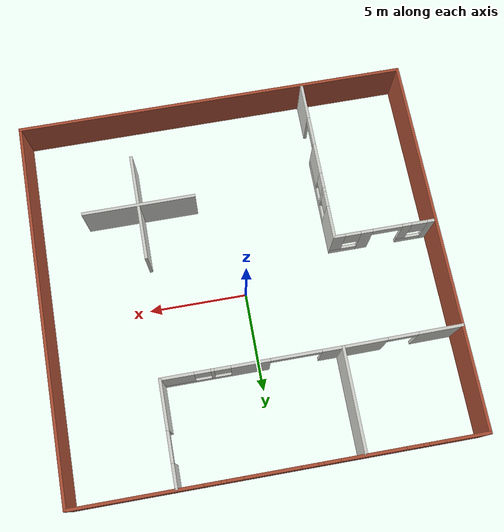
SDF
<?xml version='1.0'?>
<sdf version='1.6'>
  <model name='simpleBuilding'>
    <pose frame=''>0.055 -0.495 0 0 -0 0</pose>
    <link name='Wall_11'>
      <pose frame=''>-0.023 9.55 0 0 -0 0</pose>
      <visual name='Wall_11_Visual_0'>
        <pose frame=''>-8.89849 0 1.25 0 -0 0</pose>
        <geometry>
          <box>
            <size>2.20302 0.15 2.5</size>
          </box>
        </geometry>
        <material>
          <script>
            <uri>file://media/materials/scripts/gazebo.material</uri>
            <name>Gazebo/Bricks</name>
          </script>
          <ambient>0.760784 0.662745 0.627451 1</ambient>
        </material>
        <meta>
          <layer>0</layer>
        </meta>
      </visual>
      <collision name='Wall_11_Collision_0'>
        <geometry>
          <box>
            <size>2.20302 0.15 2.5</size>
          </box>
        </geometry>
        <pose frame=''>-8.89849 0 1.25 0 -0 0</pose>
      </collision>
      <visual name='Wall_11_Visual_1'>
        <pose frame=''>1.10151 0 0.25 0 -0 0</pose>
        <geometry>
          <box>
            <size>17.797 0.15 0.5</size>
          </box>
        </geometry>
        <material>
          <script>
            <uri>file://media/materials/scripts/gazebo.material</uri>
            <name>Gazebo/Bricks</name>
          </script>
          <ambient>0.760784 0.662745 0.627451 1</ambient>
        </material>
        <meta>
          <layer>0</layer>
        </meta>
      </visual>
      <collision name='Wall_11_Collision_1'>
        <geometry>
          <box>
            <size>17.797 0.15 0.5</size>
          </box>
        </geometry>
        <pose frame=''>1.10151 0 0.25 0 -0 0</pose>
      </collision>
      <visual name='Wall_11_Visual_2'>
        <pose frame=''>-6.86498 0 1.5 0 -0 0</pose>
        <geometry>
          <box>
            <size>0.264008 0.15 2</size>
          </box>
        </geometry>
        <material>
          <script>
            <uri>file://media/materials/scripts/gazebo.material</uri>
            <name>Gazebo/Bricks</name>
          </script>
          <ambient>0.760784 0.662745 0.627451 1</ambient>
        </material>
        <meta>
          <layer>0</layer>
        </meta>
      </visual>
      <collision name='Wall_11_Collision_2'>
        <geometry>
          <box>
            <size>0.264008 0.15 2</size>
          </box>
        </geometry>
        <pose frame=''>-6.86498 0 1.5 0 -0 0</pose>
      </collision>
      <visual name='Wall_11_Visual_3'>
        <pose frame=''>-4.39 0 1.5 0 -0 0</pose>
        <geometry>
          <box>
            <size>3.08594 0.15 2</size>
          </box>
        </geometry>
        <material>
          <script>
            <uri>file://media/materials/scripts/gazebo.material</uri>
            <name>Gazebo/Bricks</name>
          </script>
          <ambient>0.760784 0.662745 0.627451 1</ambient>
        </material>
        <meta>
          <layer>0</layer>
        </meta>
      </visual>
      <collision name='Wall_11_Collision_3'>
        <geometry>
          <box>
            <size>3.08594 0.15 2</size>
          </box>
        </geometry>
        <pose frame=''>-4.39 0 1.5 0 -0 0</pose>
      </collision>
      <visual name='Wall_11_Visual_4'>
        <pose frame=''>-1.91503 0 1.5 0 -0 0</pose>
        <geometry>
          <box>
            <size>0.264008 0.15 2</size>
          </box>
        </geometry>
        <material>
          <script>
            <uri>file://media/materials/scripts/gazebo.material</uri>
            <name>Gazebo/Bricks</name>
          </script>
          <ambient>0.760784 0.662745 0.627451 1</ambient>
        </material>
        <meta>
          <layer>0</layer>
        </meta>
      </visual>
      <collision name='Wall_11_Collision_4'>
        <geometry>
          <box>
            <size>0.264008 0.15 2</size>
          </box>
        </geometry>
        <pose frame=''>-1.91503 0 1.5 0 -0 0</pose>
      </collision>
      <visual name='Wall_11_Visual_5'>
        <pose frame=''>0.351773 0 1.5 0 -0 0</pose>
        <geometry>
          <box>
            <size>2.66959 0.15 2</size>
          </box>
        </geometry>
        <material>
          <script>
            <uri>file://media/materials/scripts/gazebo.material</uri>
            <name>Gazebo/Bricks</name>
          </script>
          <ambient>0.760784 0.662745 0.627451 1</ambient>
        </material>
        <meta>
          <layer>0</layer>
        </meta>
      </visual>
      <collision name='Wall_11_Collision_5'>
        <geometry>
          <box>
            <size>2.66959 0.15 2</size>
          </box>
        </geometry>
        <pose frame=''>0.351773 0 1.5 0 -0 0</pose>
      </collision>
      <visual name='Wall_11_Visual_6'>
        <pose frame=''>2.61857 0 1.5 0 -0 0</pose>
        <geometry>
          <box>
            <size>0.264008 0.15 2</size>
          </box>
        </geometry>
        <material>
          <script>
            <uri>file://media/materials/scripts/gazebo.material</uri>
            <name>Gazebo/Bricks</name>
          </script>
          <ambient>0.760784 0.662745 0.627451 1</ambient>
        </material>
        <meta>
          <layer>0</layer>
        </meta>
      </visual>
      <collision name='Wall_11_Collision_6'>
        <geometry>
          <box>
            <size>0.264008 0.15 2</size>
          </box>
        </geometry>
        <pose frame=''>2.61857 0 1.5 0 -0 0</pose>
      </collision>
      <visual name='Wall_11_Visual_7'>
        <pose frame=''>6.77529 0 1.5 0 -0 0</pose>
        <geometry>
          <box>
            <size>6.44942 0.15 2</size>
          </box>
        </geometry>
        <material>
          <script>
            <uri>file://media/materials/scripts/gazebo.material</uri>
            <name>Gazebo/Bricks</name>
          </script>
          <ambient>0.760784 0.662745 0.627451 1</ambient>
        </material>
        <meta>
          <layer>0</layer>
        </meta>
      </visual>
      <collision name='Wall_11_Collision_7'>
        <geometry>
          <box>
            <size>6.44942 0.15 2</size>
          </box>
        </geometry>
        <pose frame=''>6.77529 0 1.5 0 -0 0</pose>
      </collision>
      <visual name='Wall_11_Visual_8'>
        <pose frame=''>-7.39698 0 1.9 0 -0 0</pose>
        <geometry>
          <box>
            <size>0.8 0.15 1.2</size>
          </box>
        </geometry>
        <material>
          <script>
            <uri>file://media/materials/scripts/gazebo.material</uri>
            <name>Gazebo/Bricks</name>
          </script>
          <ambient>0.760784 0.662745 0.627451 1</ambient>
        </material>
        <meta>
          <layer>0</layer>
        </meta>
      </visual>
      <collision name='Wall_11_Collision_8'>
        <geometry>
          <box>
            <size>0.8 0.15 1.2</size>
          </box>
        </geometry>
        <pose frame=''>-7.39698 0 1.9 0 -0 0</pose>
      </collision>
      <visual name='Wall_11_Visual_9'>
        <pose frame=''>-6.33297 0 1.9 0 -0 0</pose>
        <geometry>
          <box>
            <size>0.8 0.15 1.2</size>
          </box>
        </geometry>
        <material>
          <script>
            <uri>file://media/materials/scripts/gazebo.material</uri>
            <name>Gazebo/Bricks</name>
          </script>
          <ambient>0.760784 0.662745 0.627451 1</ambient>
        </material>
        <meta>
          <layer>0</layer>
        </meta>
      </visual>
      <collision name='Wall_11_Collision_9'>
        <geometry>
          <box>
            <size>0.8 0.15 1.2</size>
          </box>
        </geometry>
        <pose frame=''>-6.33297 0 1.9 0 -0 0</pose>
      </collision>
      <visual name='Wall_11_Visual_10'>
        <pose frame=''>-2.44703 0 1.9 0 -0 0</pose>
        <geometry>
          <box>
            <size>0.8 0.15 1.2</size>
          </box>
        </geometry>
        <material>
          <script>
            <uri>file://media/materials/scripts/gazebo.material</uri>
            <name>Gazebo/Bricks</name>
          </script>
          <ambient>0.760784 0.662745 0.627451 1</ambient>
        </material>
        <meta>
          <layer>0</layer>
        </meta>
      </visual>
      <collision name='Wall_11_Collision_10'>
        <geometry>
          <box>
            <size>0.8 0.15 1.2</size>
          </box>
        </geometry>
        <pose frame=''>-2.44703 0 1.9 0 -0 0</pose>
      </collision>
      <visual name='Wall_11_Visual_11'>
        <pose frame=''>-1.38302 0 1.9 0 -0 0</pose>
        <geometry>
          <box>
            <size>0.8 0.15 1.2</size>
          </box>
        </geometry>
        <material>
          <script>
            <uri>file://media/materials/scripts/gazebo.material</uri>
            <name>Gazebo/Bricks</name>
          </script>
          <ambient>0.760784 0.662745 0.627451 1</ambient>
        </material>
        <meta>
          <layer>0</layer>
        </meta>
      </visual>
      <collision name='Wall_11_Collision_11'>
        <geometry>
          <box>
            <size>0.8 0.15 1.2</size>
          </box>
        </geometry>
        <pose frame=''>-1.38302 0 1.9 0 -0 0</pose>
      </collision>
      <visual name='Wall_11_Visual_12'>
        <pose frame=''>2.08657 0 1.9 0 -0 0</pose>
        <geometry>
          <box>
            <size>0.8 0.15 1.2</size>
          </box>
        </geometry>
        <material>
          <script>
            <uri>file://media/materials/scripts/gazebo.material</uri>
            <name>Gazebo/Bricks</name>
          </script>
          <ambient>0.760784 0.662745 0.627451 1</ambient>
        </material>
        <meta>
          <layer>0</layer>
        </meta>
      </visual>
      <collision name='Wall_11_Collision_12'>
        <geometry>
          <box>
            <size>0.8 0.15 1.2</size>
          </box>
        </geometry>
        <pose frame=''>2.08657 0 1.9 0 -0 0</pose>
      </collision>
      <visual name='Wall_11_Visual_13'>
        <pose frame=''>3.15058 0 1.9 0 -0 0</pose>
        <geometry>
          <box>
            <size>0.8 0.15 1.2</size>
          </box>
        </geometry>
        <material>
          <script>
            <uri>file://media/materials/scripts/gazebo.material</uri>
            <name>Gazebo/Bricks</name>
          </script>
          <ambient>0.760784 0.662745 0.627451 1</ambient>
        </material>
        <meta>
          <layer>0</layer>
        </meta>
      </visual>
      <collision name='Wall_11_Collision_13'>
        <geometry>
          <box>
            <size>0.8 0.15 1.2</size>
          </box>
        </geometry>
        <pose frame=''>3.15058 0 1.9 0 -0 0</pose>
      </collision>
    </link>
    <link name='Wall_13'>
      <pose frame=''>-6.989 4.393 0 0 -0 0.007863</pose>
      <visual name='Wall_13_Visual_0'>
        <pose frame=''>-1.88231 0 1.25 0 -0 0</pose>
        <geometry>
          <box>
            <size>2.23537 0.15 2.5</size>
          </box>
        </geometry>
        <material>
          <script>
            <uri>file://media/materials/scripts/gazebo.material</uri>
            <name>Gazebo/CeilingTiled</name>
          </script>
          <ambient>0.435294 0.796078 0.67451 1</ambient>
        </material>
        <meta>
          <layer>0</layer>
        </meta>
      </visual>
      <collision name='Wall_13_Collision_0'>
        <geometry>
          <box>
            <size>2.23537 0.15 2.5</size>
          </box>
        </geometry>
        <pose frame=''>-1.88231 0 1.25 0 -0 0</pose>
      </collision>
      <visual name='Wall_13_Visual_1'>
        <pose frame=''>1.86769 0 1.25 0 -0 0</pose>
        <geometry>
          <box>
            <size>2.26463 0.15 2.5</size>
          </box>
        </geometry>
        <material>
          <script>
            <uri>file://media/materials/scripts/gazebo.material</uri>
            <name>Gazebo/CeilingTiled</name>
          </script>
          <ambient>0.435294 0.796078 0.67451 1</ambient>
        </material>
        <meta>
          <layer>0</layer>
        </meta>
      </visual>
      <collision name='Wall_13_Collision_1'>
        <geometry>
          <box>
            <size>2.26463 0.15 2.5</size>
          </box>
        </geometry>
        <pose frame=''>1.86769 0 1.25 0 -0 0</pose>
      </collision>
      <visual name='Wall_13_Visual_2'>
        <pose frame=''>-0.01463 0 2.25 0 -0 0</pose>
        <geometry>
          <box>
            <size>1.5 0.15 0.5</size>
          </box>
        </geometry>
        <material>
          <script>
            <uri>file://media/materials/scripts/gazebo.material</uri>
            <name>Gazebo/CeilingTiled</name>
          </script>
          <ambient>0.435294 0.796078 0.67451 1</ambient>
        </material>
        <meta>
          <layer>0</layer>
        </meta>
      </visual>
      <collision name='Wall_13_Collision_2'>
        <geometry>
          <box>
            <size>1.5 0.15 0.5</size>
          </box>
        </geometry>
        <pose frame=''>-0.01463 0 2.25 0 -0 0</pose>
      </collision>
    </link>
    <link name='Wall_16'>
      <collision name='Wall_16_Collision'>
        <geometry>
          <box>
            <size>5.204 0.15 2.5</size>
          </box>
        </geometry>
        <pose frame=''>0 0 1.25 0 -0 0</pose>
      </collision>
      <visual name='Wall_16_Visual'>
        <pose frame=''>0 0 1.25 0 -0 0</pose>
        <geometry>
          <box>
            <size>5.204 0.15 2.5</size>
          </box>
        </geometry>
        <material>
          <script>
            <uri>file://media/materials/scripts/gazebo.material</uri>
            <name>Gazebo/CeilingTiled</name>
          </script>
          <ambient>0.435294 0.796078 0.67451 1</ambient>
        </material>
        <meta>
          <layer>0</layer>
        </meta>
      </visual>
      <pose frame=''>-4.064 6.943 0 0 -0 1.5708</pose>
    </link>
    <link name='Wall_18'>
      <pose frame=''>0.361 4.416 0 0 -0 0</pose>
      <visual name='Wall_18_Visual_0'>
        <pose frame=''>-3.94356 0 1.25 0 -0 0</pose>
        <geometry>
          <box>
            <size>1.11289 0.15 2.5</size>
          </box>
        </geometry>
        <material>
          <script>
            <uri>file://media/materials/scripts/gazebo.material</uri>
            <name>Gazebo/CeilingTiled</name>
          </script>
          <ambient>0.435294 0.796078 0.67451 1</ambient>
        </material>
        <meta>
          <layer>0</layer>
        </meta>
      </visual>
      <collision name='Wall_18_Collision_0'>
        <geometry>
          <box>
            <size>1.11289 0.15 2.5</size>
          </box>
        </geometry>
        <pose frame=''>-3.94356 0 1.25 0 -0 0</pose>
      </collision>
      <visual name='Wall_18_Visual_1'>
        <pose frame=''>0.068944 0 1.25 0 -0 0</pose>
        <geometry>
          <box>
            <size>1.91211 0.15 2.5</size>
          </box>
        </geometry>
        <material>
          <script>
            <uri>file://media/materials/scripts/gazebo.material</uri>
            <name>Gazebo/CeilingTiled</name>
          </script>
          <ambient>0.435294 0.796078 0.67451 1</ambient>
        </material>
        <meta>
          <layer>0</layer>
        </meta>
      </visual>
      <collision name='Wall_18_Collision_1'>
        <geometry>
          <box>
            <size>1.91211 0.15 2.5</size>
          </box>
        </geometry>
        <pose frame=''>0.068944 0 1.25 0 -0 0</pose>
      </collision>
      <visual name='Wall_18_Visual_2'>
        <pose frame=''>2.7625 0 0.25 0 -0 0</pose>
        <geometry>
          <box>
            <size>3.475 0.15 0.5</size>
          </box>
        </geometry>
        <material>
          <script>
            <uri>file://media/materials/scripts/gazebo.material</uri>
            <name>Gazebo/CeilingTiled</name>
          </script>
          <ambient>0.435294 0.796078 0.67451 1</ambient>
        </material>
        <meta>
          <layer>0</layer>
        </meta>
      </visual>
      <collision name='Wall_18_Collision_2'>
        <geometry>
          <box>
            <size>3.475 0.15 0.5</size>
          </box>
        </geometry>
        <pose frame=''>2.7625 0 0.25 0 -0 0</pose>
      </collision>
      <visual name='Wall_18_Visual_3'>
        <pose frame=''>1.91074 0 1.5 0 -0 0</pose>
        <geometry>
          <box>
            <size>0.171485 0.15 2</size>
          </box>
        </geometry>
        <material>
          <script>
            <uri>file://media/materials/scripts/gazebo.material</uri>
            <name>Gazebo/CeilingTiled</name>
          </script>
          <ambient>0.435294 0.796078 0.67451 1</ambient>
        </material>
        <meta>
          <layer>0</layer>
        </meta>
      </visual>
      <collision name='Wall_18_Collision_3'>
        <geometry>
          <box>
            <size>0.171485 0.15 2</size>
          </box>
        </geometry>
        <pose frame=''>1.91074 0 1.5 0 -0 0</pose>
      </collision>
      <visual name='Wall_18_Visual_4'>
        <pose frame=''>3.64824 0 1.5 0 -0 0</pose>
        <geometry>
          <box>
            <size>1.70351 0.15 2</size>
          </box>
        </geometry>
        <material>
          <script>
            <uri>file://media/materials/scripts/gazebo.material</uri>
            <name>Gazebo/CeilingTiled</name>
          </script>
          <ambient>0.435294 0.796078 0.67451 1</ambient>
        </material>
        <meta>
          <layer>0</layer>
        </meta>
      </visual>
      <collision name='Wall_18_Collision_4'>
        <geometry>
          <box>
            <size>1.70351 0.15 2</size>
          </box>
        </geometry>
        <pose frame=''>3.64824 0 1.5 0 -0 0</pose>
      </collision>
      <visual name='Wall_18_Visual_5'>
        <pose frame=''>1.425 0 1.9 0 -0 0</pose>
        <geometry>
          <box>
            <size>0.8 0.15 1.2</size>
          </box>
        </geometry>
        <material>
          <script>
            <uri>file://media/materials/scripts/gazebo.material</uri>
            <name>Gazebo/CeilingTiled</name>
          </script>
          <ambient>0.435294 0.796078 0.67451 1</ambient>
        </material>
        <meta>
          <layer>0</layer>
        </meta>
      </visual>
      <collision name='Wall_18_Collision_5'>
        <geometry>
          <box>
            <size>0.8 0.15 1.2</size>
          </box>
        </geometry>
        <pose frame=''>1.425 0 1.9 0 -0 0</pose>
      </collision>
      <visual name='Wall_18_Visual_6'>
        <pose frame=''>2.39649 0 1.9 0 -0 0</pose>
        <geometry>
          <box>
            <size>0.8 0.15 1.2</size>
          </box>
        </geometry>
        <material>
          <script>
            <uri>file://media/materials/scripts/gazebo.material</uri>
            <name>Gazebo/CeilingTiled</name>
          </script>
          <ambient>0.435294 0.796078 0.67451 1</ambient>
        </material>
        <meta>
          <layer>0</layer>
        </meta>
      </visual>
      <collision name='Wall_18_Collision_6'>
        <geometry>
          <box>
            <size>0.8 0.15 1.2</size>
          </box>
        </geometry>
        <pose frame=''>2.39649 0 1.9 0 -0 0</pose>
      </collision>
      <visual name='Wall_18_Visual_7'>
        <pose frame=''>-2.13711 0 2.25 0 -0 0</pose>
        <geometry>
          <box>
            <size>2.5 0.15 0.5</size>
          </box>
        </geometry>
        <material>
          <script>
            <uri>file://media/materials/scripts/gazebo.material</uri>
            <name>Gazebo/CeilingTiled</name>
          </script>
          <ambient>0.435294 0.796078 0.67451 1</ambient>
        </material>
        <meta>
          <layer>0</layer>
        </meta>
      </visual>
      <collision name='Wall_18_Collision_7'>
        <geometry>
          <box>
            <size>2.5 0.15 0.5</size>
          </box>
        </geometry>
        <pose frame=''>-2.13711 0 2.25 0 -0 0</pose>
      </collision>
    </link>
    <link name='Wall_19'>
      <pose frame=''>4.786 6.943 0 0 -0 1.5708</pose>
      <visual name='Wall_19_Visual_0'>
        <pose frame=''>-1.35274 0 1.25 0 -0 0</pose>
        <geometry>
          <box>
            <size>2.49852 0.15 2.5</size>
          </box>
        </geometry>
        <material>
          <script>
            <uri>file://media/materials/scripts/gazebo.material</uri>
            <name>Gazebo/CeilingTiled</name>
          </script>
          <ambient>0.435294 0.796078 0.67451 1</ambient>
        </material>
        <meta>
          <layer>0</layer>
        </meta>
      </visual>
      <collision name='Wall_19_Collision_0'>
        <geometry>
          <box>
            <size>2.49852 0.15 2.5</size>
          </box>
        </geometry>
        <pose frame=''>-1.35274 0 1.25 0 -0 0</pose>
      </collision>
      <visual name='Wall_19_Visual_1'>
        <pose frame=''>1.99926 0 1.25 0 -0 0</pose>
        <geometry>
          <box>
            <size>1.20548 0.15 2.5</size>
          </box>
        </geometry>
        <material>
          <script>
            <uri>file://media/materials/scripts/gazebo.material</uri>
            <name>Gazebo/CeilingTiled</name>
          </script>
          <ambient>0.435294 0.796078 0.67451 1</ambient>
        </material>
        <meta>
          <layer>0</layer>
        </meta>
      </visual>
      <collision name='Wall_19_Collision_1'>
        <geometry>
          <box>
            <size>1.20548 0.15 2.5</size>
          </box>
        </geometry>
        <pose frame=''>1.99926 0 1.25 0 -0 0</pose>
      </collision>
      <visual name='Wall_19_Visual_2'>
        <pose frame=''>0.646525 0 2.25 0 -0 0</pose>
        <geometry>
          <box>
            <size>1.5 0.15 0.5</size>
          </box>
        </geometry>
        <material>
          <script>
            <uri>file://media/materials/scripts/gazebo.material</uri>
            <name>Gazebo/CeilingTiled</name>
          </script>
          <ambient>0.435294 0.796078 0.67451 1</ambient>
        </material>
        <meta>
          <layer>0</layer>
        </meta>
      </visual>
      <collision name='Wall_19_Collision_2'>
        <geometry>
          <box>
            <size>1.5 0.15 0.5</size>
          </box>
        </geometry>
        <pose frame=''>0.646525 0 2.25 0 -0 0</pose>
      </collision>
    </link>
    <link name='Wall_21'>
      <collision name='Wall_21_Collision'>
        <geometry>
          <box>
            <size>5.5 0.15 2.5</size>
          </box>
        </geometry>
        <pose frame=''>0 0 1.25 0 -0 0</pose>
      </collision>
      <visual name='Wall_21_Visual'>
        <pose frame=''>0 0 1.25 0 -0 0</pose>
        <geometry>
          <box>
            <size>5.5 0.15 2.5</size>
          </box>
        </geometry>
        <material>
          <script>
            <uri>file://media/materials/scripts/gazebo.material</uri>
            <name>Gazebo/CeilingTiled</name>
          </script>
          <ambient>0.435294 0.796078 0.67451 1</ambient>
        </material>
        <meta>
          <layer>0</layer>
        </meta>
      </visual>
      <pose frame=''>4.562 -4.338 0 0 0 -1.5708</pose>
    </link>
    <link name='Wall_23'>
      <collision name='Wall_23_Collision'>
        <geometry>
          <box>
            <size>5.75 0.15 2.5</size>
          </box>
        </geometry>
        <pose frame=''>0 0 1.25 0 -0 0</pose>
      </collision>
      <visual name='Wall_23_Visual'>
        <pose frame=''>0 0 1.25 0 -0 0</pose>
        <geometry>
          <box>
            <size>5.75 0.15 2.5</size>
          </box>
        </geometry>
        <material>
          <script>
            <uri>file://media/materials/scripts/gazebo.material</uri>
            <name>Gazebo/CeilingTiled</name>
          </script>
          <ambient>0.435294 0.796078 0.67451 1</ambient>
        </material>
        <meta>
          <layer>0</layer>
        </meta>
      </visual>
      <pose frame=''>4.54 -4.438 0 0 -0 0</pose>
    </link>
    <link name='Wall_32'>
      <pose frame=''>-7.322 -1.061 0 0 -0 0</pose>
      <visual name='Wall_32_Visual_0'>
        <pose frame=''>-2.39428 0 1.25 0 -0 0</pose>
        <geometry>
          <box>
            <size>0.461441 0.15 2.5</size>
          </box>
        </geometry>
        <material>
          <script>
            <uri>file://media/materials/scripts/gazebo.material</uri>
            <name>Gazebo/CeilingTiled</name>
          </script>
          <ambient>0.435294 0.796078 0.67451 1</ambient>
        </material>
        <meta>
          <layer>0</layer>
        </meta>
      </visual>
      <collision name='Wall_32_Collision_0'>
        <geometry>
          <box>
            <size>0.461441 0.15 2.5</size>
          </box>
        </geometry>
        <pose frame=''>-2.39428 0 1.25 0 -0 0</pose>
      </collision>
      <visual name='Wall_32_Visual_1'>
        <pose frame=''>0.909546 0 1.25 0 -0 0</pose>
        <geometry>
          <box>
            <size>0.607926 0.15 2.5</size>
          </box>
        </geometry>
        <material>
          <script>
            <uri>file://media/materials/scripts/gazebo.material</uri>
            <name>Gazebo/CeilingTiled</name>
          </script>
          <ambient>0.435294 0.796078 0.67451 1</ambient>
        </material>
        <meta>
          <layer>0</layer>
        </meta>
      </visual>
      <collision name='Wall_32_Collision_1'>
        <geometry>
          <box>
            <size>0.607926 0.15 2.5</size>
          </box>
        </geometry>
        <pose frame=''>0.909546 0 1.25 0 -0 0</pose>
      </collision>
      <visual name='Wall_32_Visual_2'>
        <pose frame=''>-1.52899 0 0.25 0 -0 0</pose>
        <geometry>
          <box>
            <size>1.26914 0.15 0.5</size>
          </box>
        </geometry>
        <material>
          <script>
            <uri>file://media/materials/scripts/gazebo.material</uri>
            <name>Gazebo/CeilingTiled</name>
          </script>
          <ambient>0.435294 0.796078 0.67451 1</ambient>
        </material>
        <meta>
          <layer>0</layer>
        </meta>
      </visual>
      <collision name='Wall_32_Collision_2'>
        <geometry>
          <box>
            <size>1.26914 0.15 0.5</size>
          </box>
        </geometry>
        <pose frame=''>-1.52899 0 0.25 0 -0 0</pose>
      </collision>
      <visual name='Wall_32_Visual_3'>
        <pose frame=''>1.91925 0 0.25 0 -0 0</pose>
        <geometry>
          <box>
            <size>1.41149 0.15 0.5</size>
          </box>
        </geometry>
        <material>
          <script>
            <uri>file://media/materials/scripts/gazebo.material</uri>
            <name>Gazebo/CeilingTiled</name>
          </script>
          <ambient>0.435294 0.796078 0.67451 1</ambient>
        </material>
        <meta>
          <layer>0</layer>
        </meta>
      </visual>
      <collision name='Wall_32_Collision_3'>
        <geometry>
          <box>
            <size>1.41149 0.15 0.5</size>
          </box>
        </geometry>
        <pose frame=''>1.91925 0 0.25 0 -0 0</pose>
      </collision>
      <visual name='Wall_32_Visual_4'>
        <pose frame=''>-1.12899 0 1.5 0 -0 0</pose>
        <geometry>
          <box>
            <size>0.469143 0.15 2</size>
          </box>
        </geometry>
        <material>
          <script>
            <uri>file://media/materials/scripts/gazebo.material</uri>
            <name>Gazebo/CeilingTiled</name>
          </script>
          <ambient>0.435294 0.796078 0.67451 1</ambient>
        </material>
        <meta>
          <layer>0</layer>
        </meta>
      </visual>
      <collision name='Wall_32_Collision_4'>
        <geometry>
          <box>
            <size>0.469143 0.15 2</size>
          </box>
        </geometry>
        <pose frame=''>-1.12899 0 1.5 0 -0 0</pose>
      </collision>
      <visual name='Wall_32_Visual_5'>
        <pose frame=''>-1.12899 0 1.5 0 -0 0</pose>
        <geometry>
          <box>
            <size>0.469143 0.15 2</size>
          </box>
        </geometry>
        <material>
          <script>
            <uri>file://media/materials/scripts/gazebo.material</uri>
            <name>Gazebo/CeilingTiled</name>
          </script>
          <ambient>0.435294 0.796078 0.67451 1</ambient>
        </material>
        <meta>
          <layer>0</layer>
        </meta>
      </visual>
      <collision name='Wall_32_Collision_5'>
        <geometry>
          <box>
            <size>0.469143 0.15 2</size>
          </box>
        </geometry>
        <pose frame=''>-1.12899 0 1.5 0 -0 0</pose>
      </collision>
      <visual name='Wall_32_Visual_6'>
        <pose frame=''>2.31926 0 1.5 0 -0 0</pose>
        <geometry>
          <box>
            <size>0.61149 0.15 2</size>
          </box>
        </geometry>
        <material>
          <script>
            <uri>file://media/materials/scripts/gazebo.material</uri>
            <name>Gazebo/CeilingTiled</name>
          </script>
          <ambient>0.435294 0.796078 0.67451 1</ambient>
        </material>
        <meta>
          <layer>0</layer>
        </meta>
      </visual>
      <collision name='Wall_32_Collision_6'>
        <geometry>
          <box>
            <size>0.61149 0.15 2</size>
          </box>
        </geometry>
        <pose frame=''>2.31926 0 1.5 0 -0 0</pose>
      </collision>
      <visual name='Wall_32_Visual_7'>
        <pose frame=''>-1.76356 0 1.9 0 -0 0</pose>
        <geometry>
          <box>
            <size>0.8 0.15 1.2</size>
          </box>
        </geometry>
        <material>
          <script>
            <uri>file://media/materials/scripts/gazebo.material</uri>
            <name>Gazebo/CeilingTiled</name>
          </script>
          <ambient>0.435294 0.796078 0.67451 1</ambient>
        </material>
        <meta>
          <layer>0</layer>
        </meta>
      </visual>
      <collision name='Wall_32_Collision_7'>
        <geometry>
          <box>
            <size>0.8 0.15 1.2</size>
          </box>
        </geometry>
        <pose frame=''>-1.76356 0 1.9 0 -0 0</pose>
      </collision>
      <visual name='Wall_32_Visual_8'>
        <pose frame=''>1.61351 0 1.9 0 -0 0</pose>
        <geometry>
          <box>
            <size>0.8 0.15 1.2</size>
          </box>
        </geometry>
        <material>
          <script>
            <uri>file://media/materials/scripts/gazebo.material</uri>
            <name>Gazebo/CeilingTiled</name>
          </script>
          <ambient>0.435294 0.796078 0.67451 1</ambient>
        </material>
        <meta>
          <layer>0</layer>
        </meta>
      </visual>
      <collision name='Wall_32_Collision_8'>
        <geometry>
          <box>
            <size>0.8 0.15 1.2</size>
          </box>
        </geometry>
        <pose frame=''>1.61351 0 1.9 0 -0 0</pose>
      </collision>
      <visual name='Wall_32_Visual_9'>
        <pose frame=''>-0.144417 0 2.25 0 -0 0</pose>
        <geometry>
          <box>
            <size>1.5 0.15 0.5</size>
          </box>
        </geometry>
        <material>
          <script>
            <uri>file://media/materials/scripts/gazebo.material</uri>
            <name>Gazebo/CeilingTiled</name>
          </script>
          <ambient>0.435294 0.796078 0.67451 1</ambient>
        </material>
        <meta>
          <layer>0</layer>
        </meta>
      </visual>
      <collision name='Wall_32_Collision_9'>
        <geometry>
          <box>
            <size>1.5 0.15 0.5</size>
          </box>
        </geometry>
        <pose frame=''>-0.144417 0 2.25 0 -0 0</pose>
      </collision>
      <visual name='Wall_32_Visual_10'>
        <pose frame=''>-0.144417 0 2.25 0 -0 0</pose>
        <geometry>
          <box>
            <size>1.5 0.15 0.5</size>
          </box>
        </geometry>
        <material>
          <script>
            <uri>file://media/materials/scripts/gazebo.material</uri>
            <name>Gazebo/CeilingTiled</name>
          </script>
          <ambient>0.435294 0.796078 0.67451 1</ambient>
        </material>
        <meta>
          <layer>0</layer>
        </meta>
      </visual>
      <collision name='Wall_32_Collision_10'>
        <geometry>
          <box>
            <size>1.5 0.15 0.5</size>
          </box>
        </geometry>
        <pose frame=''>-0.144417 0 2.25 0 -0 0</pose>
      </collision>
    </link>
    <link name='Wall_33'>
      <pose frame=''>-4.772 -5.236 0 0 0 -1.5708</pose>
      <visual name='Wall_33_Visual_0'>
        <pose frame=''>-3.39475 0 1.25 0 -0 0</pose>
        <geometry>
          <box>
            <size>1.71049 0.15 2.5</size>
          </box>
        </geometry>
        <material>
          <script>
            <uri>file://media/materials/scripts/gazebo.material</uri>
            <name>Gazebo/CeilingTiled</name>
          </script>
          <ambient>0.435294 0.796078 0.67451 1</ambient>
        </material>
        <meta>
          <layer>0</layer>
        </meta>
      </visual>
      <collision name='Wall_33_Collision_0'>
        <geometry>
          <box>
            <size>1.71049 0.15 2.5</size>
          </box>
        </geometry>
        <pose frame=''>-3.39475 0 1.25 0 -0 0</pose>
      </collision>
      <visual name='Wall_33_Visual_1'>
        <pose frame=''>3.32696 0 1.25 0 -0 0</pose>
        <geometry>
          <box>
            <size>1.84609 0.15 2.5</size>
          </box>
        </geometry>
        <material>
          <script>
            <uri>file://media/materials/scripts/gazebo.material</uri>
            <name>Gazebo/CeilingTiled</name>
          </script>
          <ambient>0.435294 0.796078 0.67451 1</ambient>
        </material>
        <meta>
          <layer>0</layer>
        </meta>
      </visual>
      <collision name='Wall_33_Collision_1'>
        <geometry>
          <box>
            <size>1.84609 0.15 2.5</size>
          </box>
        </geometry>
        <pose frame=''>3.32696 0 1.25 0 -0 0</pose>
      </collision>
      <visual name='Wall_33_Visual_2'>
        <pose frame=''>-0.817797 0 0.25 0 -0 0</pose>
        <geometry>
          <box>
            <size>3.44342 0.15 0.5</size>
          </box>
        </geometry>
        <material>
          <script>
            <uri>file://media/materials/scripts/gazebo.material</uri>
            <name>Gazebo/CeilingTiled</name>
          </script>
          <ambient>0.435294 0.796078 0.67451 1</ambient>
        </material>
        <meta>
          <layer>0</layer>
        </meta>
      </visual>
      <collision name='Wall_33_Collision_2'>
        <geometry>
          <box>
            <size>3.44342 0.15 0.5</size>
          </box>
        </geometry>
        <pose frame=''>-0.817797 0 0.25 0 -0 0</pose>
      </collision>
      <visual name='Wall_33_Visual_3'>
        <pose frame=''>-1.63063 0 1.5 0 -0 0</pose>
        <geometry>
          <box>
            <size>0.217747 0.15 2</size>
          </box>
        </geometry>
        <material>
          <script>
            <uri>file://media/materials/scripts/gazebo.material</uri>
            <name>Gazebo/CeilingTiled</name>
          </script>
          <ambient>0.435294 0.796078 0.67451 1</ambient>
        </material>
        <meta>
          <layer>0</layer>
        </meta>
      </visual>
      <collision name='Wall_33_Collision_3'>
        <geometry>
          <box>
            <size>0.217747 0.15 2</size>
          </box>
        </geometry>
        <pose frame=''>-1.63063 0 1.5 0 -0 0</pose>
      </collision>
      <visual name='Wall_33_Visual_4'>
        <pose frame=''>0.091077 0 1.5 0 -0 0</pose>
        <geometry>
          <box>
            <size>1.62567 0.15 2</size>
          </box>
        </geometry>
        <material>
          <script>
            <uri>file://media/materials/scripts/gazebo.material</uri>
            <name>Gazebo/CeilingTiled</name>
          </script>
          <ambient>0.435294 0.796078 0.67451 1</ambient>
        </material>
        <meta>
          <layer>0</layer>
        </meta>
      </visual>
      <collision name='Wall_33_Collision_4'>
        <geometry>
          <box>
            <size>1.62567 0.15 2</size>
          </box>
        </geometry>
        <pose frame=''>0.091077 0 1.5 0 -0 0</pose>
      </collision>
      <visual name='Wall_33_Visual_5'>
        <pose frame=''>-2.13951 0 1.9 0 -0 0</pose>
        <geometry>
          <box>
            <size>0.8 0.15 1.2</size>
          </box>
        </geometry>
        <material>
          <script>
            <uri>file://media/materials/scripts/gazebo.material</uri>
            <name>Gazebo/CeilingTiled</name>
          </script>
          <ambient>0.435294 0.796078 0.67451 1</ambient>
        </material>
        <meta>
          <layer>0</layer>
        </meta>
      </visual>
      <collision name='Wall_33_Collision_5'>
        <geometry>
          <box>
            <size>0.8 0.15 1.2</size>
          </box>
        </geometry>
        <pose frame=''>-2.13951 0 1.9 0 -0 0</pose>
      </collision>
      <visual name='Wall_33_Visual_6'>
        <pose frame=''>-1.12176 0 1.9 0 -0 0</pose>
        <geometry>
          <box>
            <size>0.8 0.15 1.2</size>
          </box>
        </geometry>
        <material>
          <script>
            <uri>file://media/materials/scripts/gazebo.material</uri>
            <name>Gazebo/CeilingTiled</name>
          </script>
          <ambient>0.435294 0.796078 0.67451 1</ambient>
        </material>
        <meta>
          <layer>0</layer>
        </meta>
      </visual>
      <collision name='Wall_33_Collision_6'>
        <geometry>
          <box>
            <size>0.8 0.15 1.2</size>
          </box>
        </geometry>
        <pose frame=''>-1.12176 0 1.9 0 -0 0</pose>
      </collision>
      <visual name='Wall_33_Visual_7'>
        <pose frame=''>1.65391 0 2.25 0 -0 0</pose>
        <geometry>
          <box>
            <size>1.5 0.15 0.5</size>
          </box>
        </geometry>
        <material>
          <script>
            <uri>file://media/materials/scripts/gazebo.material</uri>
            <name>Gazebo/CeilingTiled</name>
          </script>
          <ambient>0.435294 0.796078 0.67451 1</ambient>
        </material>
        <meta>
          <layer>0</layer>
        </meta>
      </visual>
      <collision name='Wall_33_Collision_7'>
        <geometry>
          <box>
            <size>1.5 0.15 0.5</size>
          </box>
        </geometry>
        <pose frame=''>1.65391 0 2.25 0 -0 0</pose>
      </collision>
    </link>
    <link name='Wall_7'>
      <collision name='Wall_7_Collision'>
        <geometry>
          <box>
            <size>19.25 0.15 2.5</size>
          </box>
        </geometry>
        <pose frame=''>0 0 1.25 0 -0 0</pose>
      </collision>
      <visual name='Wall_7_Visual'>
        <pose frame=''>0 0 1.25 0 -0 0</pose>
        <geometry>
          <box>
            <size>19.25 0.15 2.5</size>
          </box>
        </geometry>
        <material>
          <script>
            <uri>file://media/materials/scripts/gazebo.material</uri>
            <name>Gazebo/Bricks</name>
          </script>
          <ambient>0.760784 0.662745 0.627451 1</ambient>
        </material>
        <meta>
          <layer>0</layer>
        </meta>
      </visual>
      <pose frame=''>-9.925 0 0 0 0 -1.56839</pose>
    </link>
    <link name='Wall_8'>
      <collision name='Wall_8_Collision'>
        <geometry>
          <box>
            <size>20 0.15 2.5</size>
          </box>
        </geometry>
        <pose frame=''>0 0 1.25 0 -0 0</pose>
      </collision>
      <visual name='Wall_8_Visual'>
        <pose frame=''>0 0 1.25 0 -0 0</pose>
        <geometry>
          <box>
            <size>20 0.15 2.5</size>
          </box>
        </geometry>
        <material>
          <script>
            <uri>file://media/materials/scripts/gazebo.material</uri>
            <name>Gazebo/Bricks</name>
          </script>
          <ambient>0.760784 0.662745 0.627451 1</ambient>
        </material>
        <meta>
          <layer>0</layer>
        </meta>
      </visual>
      <pose frame=''>0.023 -9.55 0 0 -0 0</pose>
    </link>
    <link name='Wall_9'>
      <collision name='Wall_9_Collision'>
        <geometry>
          <box>
            <size>19.25 0.15 2.5</size>
          </box>
        </geometry>
        <pose frame=''>0 0 1.25 0 -0 0</pose>
      </collision>
      <visual name='Wall_9_Visual'>
        <pose frame=''>0 0 1.25 0 -0 0</pose>
        <geometry>
          <box>
            <size>19.25 0.15 2.5</size>
          </box>
        </geometry>
        <material>
          <script>
            <uri>file://media/materials/scripts/gazebo.material</uri>
            <name>Gazebo/Bricks</name>
          </script>
          <ambient>0.760784 0.662745 0.627451 1</ambient>
        </material>
        <meta>
          <layer>0</layer>
        </meta>
      </visual>
      <pose frame=''>9.925 0 0 0 -0 1.5732</pose>
    </link>
    <static>1</static>
  </model>
</sdf>
